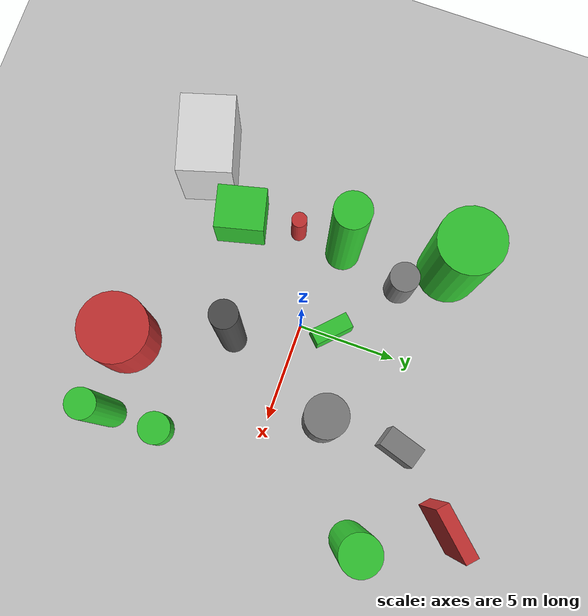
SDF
<?xml version='1.0'?>
<sdf version='1.6'>
  <world name='default'>
    <!-- Sun light -->
    <light name='sun' type='directional'>
      <cast_shadows>1</cast_shadows>
      <pose>0 0 10 0 0 0</pose>
      <diffuse>0.8 0.8 0.8 1</diffuse>
      <specular>0.2 0.2 0.2 1</specular>
      <attenuation>
        <range>1000</range>
        <constant>0.9</constant>
        <linear>0.01</linear>
        <quadratic>0.001</quadratic>
      </attenuation>
      <direction>-0.5 0.1 -0.9</direction>
    </light>

    <!-- Ground plane -->
    <model name='ground_plane'>
      <static>1</static>
      <link name='link'>
        <collision name='collision'>
          <geometry>
            <plane>
              <normal>0 0 1</normal>
              <size>100 100</size>
            </plane>
          </geometry>
          <surface>
            <contact>
              <collide_bitmask>65535</collide_bitmask>
              <ode/>
            </contact>
            <friction>
              <ode>
                <mu>100</mu>
                <mu2>50</mu2>
              </ode>
              <torsional><ode/></torsional>
            </friction>
            <bounce/>
          </surface>
          <max_contacts>10</max_contacts>
        </collision>
        <visual name='visual'>
          <cast_shadows>0</cast_shadows>
          <geometry>
            <plane>
              <normal>0 0 1</normal>
              <size>100 100</size>
            </plane>
          </geometry>
          <material>
            <script>
              <uri>file://media/materials/scripts/gazebo.material</uri>
              <n>Gazebo/Grey</n>
            </script>
          </material>
        </visual>
      </link>
    </model>

    <!-- Environment -->
    <magnetic_field>6e-06 2.3e-05 -4.2e-05</magnetic_field>
    <atmosphere type='adiabatic'/>
    <physics name='default_physics' default='0' type='ode'>
      <gravity>0 0 -9.8</gravity>
      <max_step_size>0.004</max_step_size>
      <real_time_factor>1</real_time_factor>
      <real_time_update_rate>250</real_time_update_rate>
    </physics>
    <scene>
      <ambient>0.4 0.4 0.4 1</ambient>
      <background>0.7 0.7 0.7 1</background>
      <shadows>1</shadows>
    </scene>
    <wind/>
    <spherical_coordinates>
      <surface_model>EARTH_WGS84</surface_model>
      <latitude_deg>0</latitude_deg>
      <longitude_deg>0</longitude_deg>
      <elevation>0</elevation>
      <heading_deg>0</heading_deg>
    </spherical_coordinates>

    <!-- ============ OBSTACLES (15) ============ -->
    <model name='obs_00'>
      <static>1</static>
      <link name='link'>
        <visual name='visual'>
          <geometry>
            <cylinder>
              <radius>1.6200</radius>
              <length>6.3822</length>
            </cylinder>
          </geometry>
          <material>
            <script>
              <n>Gazebo/Green</n>
              <uri>file://media/materials/scripts/gazebo.material</uri>
            </script>
            <ambient>0.2 0.8 0.2 1</ambient>
          </material>
        </visual>
        <collision name='collision'>
          <geometry>
            <cylinder>
              <radius>1.6200</radius>
              <length>6.3822</length>
            </cylinder>
          </geometry>
          <max_contacts>10</max_contacts>
          <surface>
            <contact><ode/></contact>
            <bounce/>
            <friction>
              <ode><mu>1</mu><mu2>1</mu2></ode>
              <torsional><ode/></torsional>
            </friction>
          </surface>
        </collision>
      </link>
      <pose>-5.2611 6.2141 3.1911 0 0 0.2372</pose>
    </model>

    <model name='obs_01'>
      <static>1</static>
      <link name='link'>
        <visual name='visual'>
          <geometry>
            <cylinder>
              <radius>0.6647</radius>
              <length>7.5544</length>
            </cylinder>
          </geometry>
          <material>
            <script>
              <n>Gazebo/DarkGrey</n>
              <uri>file://media/materials/scripts/gazebo.material</uri>
            </script>
            <ambient>0.3 0.3 0.3 1</ambient>
          </material>
        </visual>
        <collision name='collision'>
          <geometry>
            <cylinder>
              <radius>0.6647</radius>
              <length>7.5544</length>
            </cylinder>
          </geometry>
          <max_contacts>10</max_contacts>
          <surface>
            <contact><ode/></contact>
            <bounce/>
            <friction>
              <ode><mu>1</mu><mu2>1</mu2></ode>
              <torsional><ode/></torsional>
            </friction>
          </surface>
        </collision>
      </link>
      <pose>1.7585 -2.9874 3.7772 0 0 1.6198</pose>
    </model>

    <model name='obs_02'>
      <static>1</static>
      <link name='link'>
        <visual name='visual'>
          <geometry>
            <cylinder>
              <radius>1.0529</radius>
              <length>5.0737</length>
            </cylinder>
          </geometry>
          <material>
            <script>
              <n>Gazebo/Grey</n>
              <uri>file://media/materials/scripts/gazebo.material</uri>
            </script>
            <ambient>0.5 0.5 0.5 1</ambient>
          </material>
        </visual>
        <collision name='collision'>
          <geometry>
            <cylinder>
              <radius>1.0529</radius>
              <length>5.0737</length>
            </cylinder>
          </geometry>
          <max_contacts>10</max_contacts>
          <surface>
            <contact><ode/></contact>
            <bounce/>
            <friction>
              <ode><mu>1</mu><mu2>1</mu2></ode>
              <torsional><ode/></torsional>
            </friction>
          </surface>
        </collision>
      </link>
      <pose>4.2151 2.6554 2.5368 0 0 1.4285</pose>
    </model>

    <model name='obs_03'>
      <static>1</static>
      <link name='link'>
        <visual name='visual'>
          <geometry>
            <box>
              <size>3.9025 2.7219 4.4864</size>
            </box>
          </geometry>
          <material>
            <script>
              <n>Gazebo/White</n>
              <uri>file://media/materials/scripts/gazebo.material</uri>
            </script>
            <ambient>0.9 0.9 0.9 1</ambient>
          </material>
        </visual>
        <collision name='collision'>
          <geometry>
            <box>
              <size>3.9025 2.7219 4.4864</size>
            </box>
          </geometry>
          <max_contacts>10</max_contacts>
          <surface>
            <contact><ode/></contact>
            <bounce/>
            <friction>
              <ode><mu>1</mu><mu2>1</mu2></ode>
              <torsional><ode/></torsional>
            </friction>
          </surface>
        </collision>
      </link>
      <pose>-6.6804 -7.2153 2.2432 0 0 0.2926</pose>
    </model>

    <model name='obs_04'>
      <static>1</static>
      <link name='link'>
        <visual name='visual'>
          <geometry>
            <cylinder>
              <radius>0.8858</radius>
              <length>7.7769</length>
            </cylinder>
          </geometry>
          <material>
            <script>
              <n>Gazebo/Green</n>
              <uri>file://media/materials/scripts/gazebo.material</uri>
            </script>
            <ambient>0.2 0.8 0.2 1</ambient>
          </material>
        </visual>
        <collision name='collision'>
          <geometry>
            <cylinder>
              <radius>0.8858</radius>
              <length>7.7769</length>
            </cylinder>
          </geometry>
          <max_contacts>10</max_contacts>
          <surface>
            <contact><ode/></contact>
            <bounce/>
            <friction>
              <ode><mu>1</mu><mu2>1</mu2></ode>
              <torsional><ode/></torsional>
            </friction>
          </surface>
        </collision>
      </link>
      <pose>-4.3783 0.7754 3.8885 0 0 2.4997</pose>
    </model>

    <model name='obs_05'>
      <static>1</static>
      <link name='link'>
        <visual name='visual'>
          <geometry>
            <cylinder>
              <radius>0.7473</radius>
              <length>2.9852</length>
            </cylinder>
          </geometry>
          <material>
            <script>
              <n>Gazebo/Grey</n>
              <uri>file://media/materials/scripts/gazebo.material</uri>
            </script>
            <ambient>0.5 0.5 0.5 1</ambient>
          </material>
        </visual>
        <collision name='collision'>
          <geometry>
            <cylinder>
              <radius>0.7473</radius>
              <length>2.9852</length>
            </cylinder>
          </geometry>
          <max_contacts>10</max_contacts>
          <surface>
            <contact><ode/></contact>
            <bounce/>
            <friction>
              <ode><mu>1</mu><mu2>1</mu2></ode>
              <torsional><ode/></torsional>
            </friction>
          </surface>
        </collision>
      </link>
      <pose>-3.5269 4.0811 1.4926 0 0 1.5542</pose>
    </model>

    <model name='obs_06'>
      <static>1</static>
      <link name='link'>
        <visual name='visual'>
          <geometry>
            <box>
              <size>2.4815 2.1987 2.7187</size>
            </box>
          </geometry>
          <material>
            <script>
              <n>Gazebo/Green</n>
              <uri>file://media/materials/scripts/gazebo.material</uri>
            </script>
            <ambient>0.2 0.8 0.2 1</ambient>
          </material>
        </visual>
        <collision name='collision'>
          <geometry>
            <box>
              <size>2.4815 2.1987 2.7187</size>
            </box>
          </geometry>
          <max_contacts>10</max_contacts>
          <surface>
            <contact><ode/></contact>
            <bounce/>
            <friction>
              <ode><mu>1</mu><mu2>1</mu2></ode>
              <torsional><ode/></torsional>
            </friction>
          </surface>
        </collision>
      </link>
      <pose>-4.2133 -4.6531 1.3593 0 0 1.8156</pose>
    </model>

    <model name='obs_07'>
      <static>1</static>
      <link name='link'>
        <visual name='visual'>
          <geometry>
            <box>
              <size>0.6608 2.6916 5.1835</size>
            </box>
          </geometry>
          <material>
            <script>
              <n>Gazebo/Red</n>
              <uri>file://media/materials/scripts/gazebo.material</uri>
            </script>
            <ambient>0.8 0.2 0.2 1</ambient>
          </material>
        </visual>
        <collision name='collision'>
          <geometry>
            <box>
              <size>0.6608 2.6916 5.1835</size>
            </box>
          </geometry>
          <max_contacts>10</max_contacts>
          <surface>
            <contact><ode/></contact>
            <bounce/>
            <friction>
              <ode><mu>1</mu><mu2>1</mu2></ode>
              <torsional><ode/></torsional>
            </friction>
          </surface>
        </collision>
      </link>
      <pose>7.1603 9.7098 2.5918 0 0 2.3947</pose>
    </model>

    <model name='obs_08'>
      <static>1</static>
      <link name='link'>
        <visual name='visual'>
          <geometry>
            <cylinder>
              <radius>1.7367</radius>
              <length>4.0890</length>
            </cylinder>
          </geometry>
          <material>
            <script>
              <n>Gazebo/Red</n>
              <uri>file://media/materials/scripts/gazebo.material</uri>
            </script>
            <ambient>0.8 0.2 0.2 1</ambient>
          </material>
        </visual>
        <collision name='collision'>
          <geometry>
            <cylinder>
              <radius>1.7367</radius>
              <length>4.0890</length>
            </cylinder>
          </geometry>
          <max_contacts>10</max_contacts>
          <surface>
            <contact><ode/></contact>
            <bounce/>
            <friction>
              <ode><mu>1</mu><mu2>1</mu2></ode>
              <torsional><ode/></torsional>
            </friction>
          </surface>
        </collision>
      </link>
      <pose>3.5860 -8.0955 2.0445 0 0 0.3903</pose>
    </model>

    <model name='obs_09'>
      <static>1</static>
      <link name='link'>
        <visual name='visual'>
          <geometry>
            <cylinder>
              <radius>0.9414</radius>
              <length>7.9699</length>
            </cylinder>
          </geometry>
          <material>
            <script>
              <n>Gazebo/Green</n>
              <uri>file://media/materials/scripts/gazebo.material</uri>
            </script>
            <ambient>0.2 0.8 0.2 1</ambient>
          </material>
        </visual>
        <collision name='collision'>
          <geometry>
            <cylinder>
              <radius>0.9414</radius>
              <length>7.9699</length>
            </cylinder>
          </geometry>
          <max_contacts>10</max_contacts>
          <surface>
            <contact><ode/></contact>
            <bounce/>
            <friction>
              <ode><mu>1</mu><mu2>1</mu2></ode>
              <torsional><ode/></torsional>
            </friction>
          </surface>
        </collision>
      </link>
      <pose>9.2554 5.7138 3.9849 0 0 3.1160</pose>
    </model>

    <model name='obs_10'>
      <static>1</static>
      <link name='link'>
        <visual name='visual'>
          <geometry>
            <cylinder>
              <radius>0.7085</radius>
              <length>7.1210</length>
            </cylinder>
          </geometry>
          <material>
            <script>
              <n>Gazebo/Green</n>
              <uri>file://media/materials/scripts/gazebo.material</uri>
            </script>
            <ambient>0.2 0.8 0.2 1</ambient>
          </material>
        </visual>
        <collision name='collision'>
          <geometry>
            <cylinder>
              <radius>0.7085</radius>
              <length>7.1210</length>
            </cylinder>
          </geometry>
          <max_contacts>10</max_contacts>
          <surface>
            <contact><ode/></contact>
            <bounce/>
            <friction>
              <ode><mu>1</mu><mu2>1</mu2></ode>
              <torsional><ode/></torsional>
            </friction>
          </surface>
        </collision>
      </link>
      <pose>7.3410 -7.4622 3.5605 0 0 2.7713</pose>
    </model>

    <model name='obs_11'>
      <static>1</static>
      <link name='link'>
        <visual name='visual'>
          <geometry>
            <cylinder>
              <radius>0.8168</radius>
              <length>1.5769</length>
            </cylinder>
          </geometry>
          <material>
            <script>
              <n>Gazebo/Green</n>
              <uri>file://media/materials/scripts/gazebo.material</uri>
            </script>
            <ambient>0.2 0.8 0.2 1</ambient>
          </material>
        </visual>
        <collision name='collision'>
          <geometry>
            <cylinder>
              <radius>0.8168</radius>
              <length>1.5769</length>
            </cylinder>
          </geometry>
          <max_contacts>10</max_contacts>
          <surface>
            <contact><ode/></contact>
            <bounce/>
            <friction>
              <ode><mu>1</mu><mu2>1</mu2></ode>
              <torsional><ode/></torsional>
            </friction>
          </surface>
        </collision>
      </link>
      <pose>7.3216 -5.0065 0.7885 0 0 0.2932</pose>
    </model>

    <model name='obs_12'>
      <static>1</static>
      <link name='link'>
        <visual name='visual'>
          <geometry>
            <box>
              <size>1.0793 1.8872 2.5275</size>
            </box>
          </geometry>
          <material>
            <script>
              <n>Gazebo/Grey</n>
              <uri>file://media/materials/scripts/gazebo.material</uri>
            </script>
            <ambient>0.5 0.5 0.5 1</ambient>
          </material>
        </visual>
        <collision name='collision'>
          <geometry>
            <box>
              <size>1.0793 1.8872 2.5275</size>
            </box>
          </geometry>
          <max_contacts>10</max_contacts>
          <surface>
            <contact><ode/></contact>
            <bounce/>
            <friction>
              <ode><mu>1</mu><mu2>1</mu2></ode>
              <torsional><ode/></torsional>
            </friction>
          </surface>
        </collision>
      </link>
      <pose>4.2279 6.5696 1.2638 0 0 2.8394</pose>
    </model>

    <model name='obs_13'>
      <static>1</static>
      <link name='link'>
        <visual name='visual'>
          <geometry>
            <box>
              <size>2.0023 0.8192 1.4759</size>
            </box>
          </geometry>
          <material>
            <script>
              <n>Gazebo/Green</n>
              <uri>file://media/materials/scripts/gazebo.material</uri>
            </script>
            <ambient>0.2 0.8 0.2 1</ambient>
          </material>
        </visual>
        <collision name='collision'>
          <geometry>
            <box>
              <size>2.0023 0.8192 1.4759</size>
            </box>
          </geometry>
          <max_contacts>10</max_contacts>
          <surface>
            <contact><ode/></contact>
            <bounce/>
            <friction>
              <ode><mu>1</mu><mu2>1</mu2></ode>
              <torsional><ode/></torsional>
            </friction>
          </surface>
        </collision>
      </link>
      <pose>-0.2108 1.5485 0.7380 0 0 2.3726</pose>
    </model>

    <model name='obs_14'>
      <static>1</static>
      <link name='link'>
        <visual name='visual'>
          <geometry>
            <cylinder>
              <radius>0.3955</radius>
              <length>2.5833</length>
            </cylinder>
          </geometry>
          <material>
            <script>
              <n>Gazebo/Red</n>
              <uri>file://media/materials/scripts/gazebo.material</uri>
            </script>
            <ambient>0.8 0.2 0.2 1</ambient>
          </material>
        </visual>
        <collision name='collision'>
          <geometry>
            <cylinder>
              <radius>0.3955</radius>
              <length>2.5833</length>
            </cylinder>
          </geometry>
          <max_contacts>10</max_contacts>
          <surface>
            <contact><ode/></contact>
            <bounce/>
            <friction>
              <ode><mu>1</mu><mu2>1</mu2></ode>
              <torsional><ode/></torsional>
            </friction>
          </surface>
        </collision>
      </link>
      <pose>-4.6257 -1.7155 1.2917 0 0 1.4979</pose>
    </model>

    <!-- GUI camera -->
    <gui fullscreen='0'>
      <camera name='user_camera'>
        <pose>-15 0 18 0 0.85 0.15</pose>
        <view_controller>orbit</view_controller>
        <projection_type>perspective</projection_type>
      </camera>
    </gui>
  </world>
</sdf>
